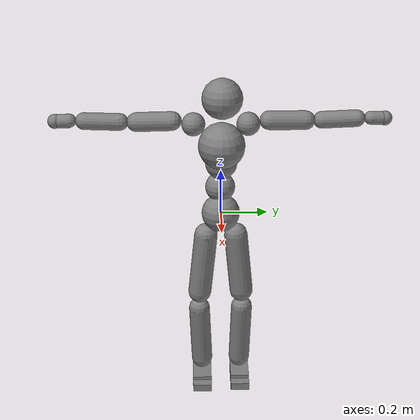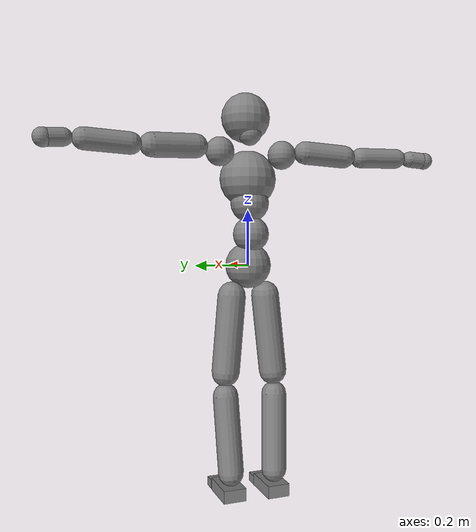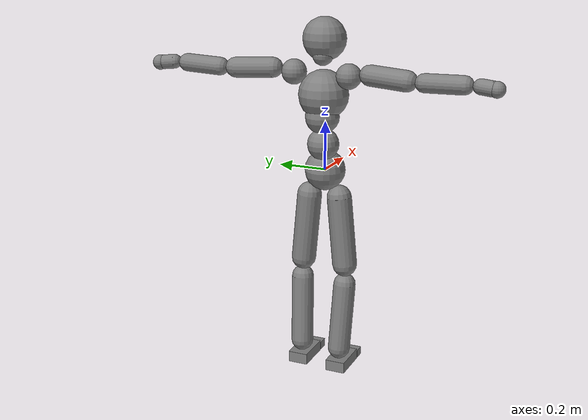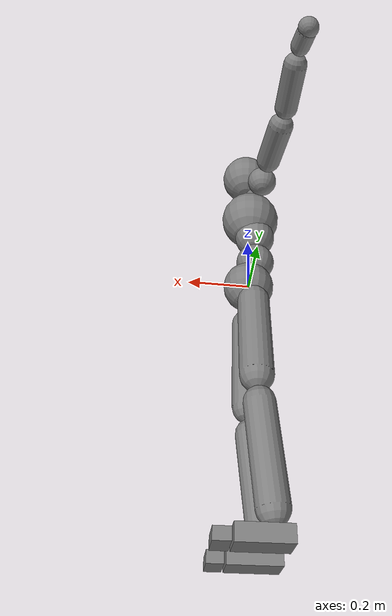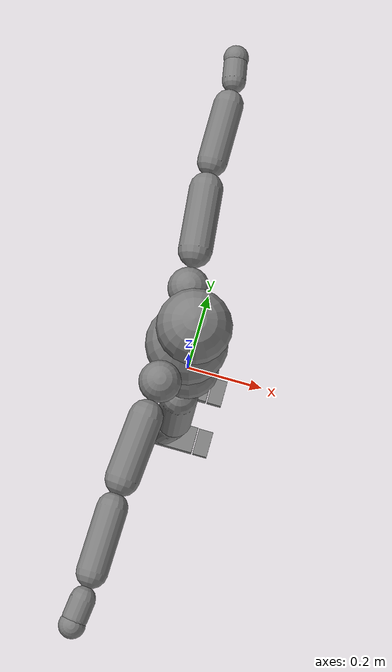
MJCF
<mujoco model="smpl">
  <compiler angle="radian" />
  <default>
    <motor ctrlrange="-1 1" ctrllimited="true" />
    <geom condim="1" friction="1.0 0.05 0.05" solimp=".9 .99 .003" solref=".015 1" />
    <joint limited="true" solimplimit="0 .99 .01" />
    <site size=".04" group="3" />
    <default class="force-torque">
      <site type="box" size=".01 .01 .02" rgba="1 0 0 1" />
    </default>
    <default class="touch">
      <site type="capsule" rgba="0 0 1 .3" />
    </default>
  </default>
  <worldbody>
    <body name="Pelvis" pos="0.000000 0.000000 0.000000">
      <freejoint name="Pelvis" />
      <geom type="sphere" contype="1" conaffinity="1" density="2568.422783" size="0.082800" pos="0.000000 0.000000 0.000000" />
      <body name="L_Hip" pos="-0.006256 0.063940 -0.084088">
        <joint name="L_Hip_x" type="hinge" pos="0 0 0" axis="1 0 0" actuatorfrcrange="-300 300" stiffness="500" damping="50" armature="0.02" range="-0.5236 1.5708" />
        <joint name="L_Hip_y" type="hinge" pos="0 0 0" axis="0 1 0" actuatorfrcrange="-300 300" stiffness="500" damping="50" armature="0.02" range="-2.4435 1.0472" />
        <joint name="L_Hip_z" type="hinge" pos="0 0 0" axis="0 0 1" actuatorfrcrange="-300 300" stiffness="500" damping="50" armature="0.02" range="-0.6109 1.0472" />
        <geom type="capsule" contype="1" conaffinity="1" density="1926.317087" fromto="-0.000290 0.002209 -0.024163 -0.003643 0.027769 -0.303762" size="0.050600" />
        <body name="L_Knee" pos="-0.004140 0.031556 -0.345184">
          <joint name="L_Knee_x" type="hinge" pos="0 0 0" axis="1 0 0" actuatorfrcrange="-200 200" stiffness="500" damping="50" armature="0.02" range="-0.5236 0.5236" />
          <joint name="L_Knee_y" type="hinge" pos="0 0 0" axis="0 1 0" actuatorfrcrange="-200 200" stiffness="500" damping="50" armature="0.02" range="0 2.7925" />
          <joint name="L_Knee_z" type="hinge" pos="0 0 0" axis="0 0 1" actuatorfrcrange="-200 200" stiffness="500" damping="50" armature="0.02" range="-0.5236 0.5236" />
          <geom type="capsule" contype="1" conaffinity="1" density="1605.264239" fromto="-0.004824 -0.001501 -0.043939 -0.035380 -0.011011 -0.322221" size="0.046000" />
          <body name="L_Ankle" pos="-0.040204 -0.012512 -0.366160">
            <joint name="L_Ankle_x" type="hinge" pos="0 0 0" axis="1 0 0" actuatorfrcrange="-100 100" stiffness="400" damping="40" armature="0.02" range="-0.5236 0.5236" />
            <joint name="L_Ankle_y" type="hinge" pos="0 0 0" axis="0 1 0" actuatorfrcrange="-100 100" stiffness="400" damping="40" armature="0.02" range="-0.9599 0.9599" />
            <joint name="L_Ankle_z" type="hinge" pos="0 0 0" axis="0 0 1" actuatorfrcrange="-100 100" stiffness="400" damping="40" armature="0.02" range="-0.6981 0.6981" />
            <geom type="box" contype="1" conaffinity="1" density="1284.211391" pos="0.031832 0.002208 -0.025668" size="0.073600 0.041400 0.023000" quat="1.0000 0.0000 0.0000 0.0000" />
            <body name="L_Toe" pos="0.109756 0.011408 -0.023736">
              <joint name="L_Toe_x" type="hinge" pos="0 0 0" axis="1 0 0" actuatorfrcrange="-75 75" stiffness="200" damping="20" armature="0.02" range="-0.5236 0.5236" />
              <joint name="L_Toe_y" type="hinge" pos="0 0 0" axis="0 1 0" actuatorfrcrange="-75 75" stiffness="200" damping="20" armature="0.02" range="-1.0472 1.0472" />
              <joint name="L_Toe_z" type="hinge" pos="0 0 0" axis="0 0 1" actuatorfrcrange="-75 75" stiffness="200" damping="20" armature="0.02" range="-0.5236 0.5236" />
              <geom type="box" contype="1" conaffinity="1" density="1284.211391" pos="0.023184 -0.009200 -0.007360" size="0.023000 0.041400 0.016560" quat="1.0000 0.0000 0.0000 0.0000" />
            </body>
          </body>
        </body>
      </body>
      <body name="R_Hip" pos="-0.003956 -0.062284 -0.083260">
        <joint name="R_Hip_x" type="hinge" pos="0 0 0" axis="1 0 0" actuatorfrcrange="-300 300" stiffness="500" damping="50" armature="0.02" range="-1.5708 0.5236" />
        <joint name="R_Hip_y" type="hinge" pos="0 0 0" axis="0 1 0" actuatorfrcrange="-300 300" stiffness="500" damping="50" armature="0.02" range="-2.4435 1.0472" />
        <joint name="R_Hip_z" type="hinge" pos="0 0 0" axis="0 0 1" actuatorfrcrange="-300 300" stiffness="500" damping="50" armature="0.02" range="-1.0472 0.6109" />
        <geom type="capsule" contype="1" conaffinity="1" density="1926.317087" fromto="-0.000573 -0.002467 -0.024639 -0.007205 -0.031008 -0.309753" size="0.050600" />
        <body name="R_Knee" pos="-0.008188 -0.035236 -0.351992">
          <joint name="R_Knee_x" type="hinge" pos="0 0 0" axis="1 0 0" actuatorfrcrange="-200 200" stiffness="500" damping="50" armature="0.02" range="-0.5236 0.5236" />
          <joint name="R_Knee_y" type="hinge" pos="0 0 0" axis="0 1 0" actuatorfrcrange="-200 200" stiffness="500" damping="50" armature="0.02" range="0 2.7925" />
          <joint name="R_Knee_z" type="hinge" pos="0 0 0" axis="0 0 1" actuatorfrcrange="-200 200" stiffness="500" damping="50" armature="0.02" range="-0.5236 0.5236" />
          <geom type="capsule" contype="1" conaffinity="1" density="1605.264239" fromto="-0.004670 0.001744 -0.043983 -0.034246 0.012792 -0.322545" size="0.046000" />
          <body name="R_Ankle" pos="-0.038916 0.014536 -0.366528">
            <joint name="R_Ankle_x" type="hinge" pos="0 0 0" axis="1 0 0" actuatorfrcrange="-100 100" stiffness="400" damping="40" armature="0.02" range="-0.5236 0.5236" />
            <joint name="R_Ankle_y" type="hinge" pos="0 0 0" axis="0 1 0" actuatorfrcrange="-100 100" stiffness="400" damping="40" armature="0.02" range="-0.9599 0.9599" />
            <joint name="R_Ankle_z" type="hinge" pos="0 0 0" axis="0 0 1" actuatorfrcrange="-100 100" stiffness="400" damping="40" armature="0.02" range="-0.6981 0.6981" />
            <geom type="box" contype="1" conaffinity="1" density="1284.211391" pos="0.031832 -0.002208 -0.025668" size="0.073600 0.041400 0.023000" quat="1.0000 0.0000 0.0000 0.0000" />
            <body name="R_Toe" pos="0.109756 -0.011408 -0.023736">
              <joint name="R_Toe_x" type="hinge" pos="0 0 0" axis="1 0 0" actuatorfrcrange="-75 75" stiffness="200" damping="20" armature="0.02" range="-0.5236 0.5236" />
              <joint name="R_Toe_y" type="hinge" pos="0 0 0" axis="0 1 0" actuatorfrcrange="-75 75" stiffness="200" damping="20" armature="0.02" range="-1.0472 1.0472" />
              <joint name="R_Toe_z" type="hinge" pos="0 0 0" axis="0 0 1" actuatorfrcrange="-75 75" stiffness="200" damping="20" armature="0.02" range="-0.5236 0.5236" />
              <geom type="box" contype="1" conaffinity="1" density="1284.211391" pos="0.023184 0.009200 -0.007360" size="0.023000 0.041400 0.016560" quat="1.0000 0.0000 0.0000 0.0000" />
            </body>
          </body>
        </body>
      </body>
      <body name="Torso" pos="-0.024564 -0.002300 0.100280">
        <joint name="Torso_x" type="hinge" pos="0 0 0" axis="1 0 0" actuatorfrcrange="-300 300" stiffness="1000" damping="100" armature="0.02" range="-1.0472 1.0472" />
        <joint name="Torso_y" type="hinge" pos="0 0 0" axis="0 1 0" actuatorfrcrange="-300 300" stiffness="1000" damping="100" armature="0.02" range="-1.0472 1.5708" />
        <joint name="Torso_z" type="hinge" pos="0 0 0" axis="0 0 1" actuatorfrcrange="-300 300" stiffness="1000" damping="100" armature="0.02" range="-0.8727 0.8727" />
        <geom type="sphere" contype="1" conaffinity="1" density="2568.422783" size="0.064400" pos="0.000101 0.000506 0.012438" />
        <body name="Spine" pos="0.001012 0.005060 0.124384">
          <joint name="Spine_x" type="hinge" pos="0 0 0" axis="1 0 0" actuatorfrcrange="-200 200" stiffness="1000" damping="100" armature="0.02" range="-1.0472 1.0472" />
          <joint name="Spine_y" type="hinge" pos="0 0 0" axis="0 1 0" actuatorfrcrange="-200 200" stiffness="1000" damping="100" armature="0.02" range="-1.0472 1.5708" />
          <joint name="Spine_z" type="hinge" pos="0 0 0" axis="0 0 1" actuatorfrcrange="-200 200" stiffness="1000" damping="100" armature="0.02" range="-0.8727 0.8727" />
          <geom type="sphere" contype="1" conaffinity="1" density="2568.422783" size="0.069000" pos="0.000000 0.000000 0.000000" />
          <body name="Chest" pos="0.023368 0.001380 0.048668">
            <joint name="Chest_x" type="hinge" pos="0 0 0" axis="1 0 0" actuatorfrcrange="-150 150" stiffness="1000" damping="100" armature="0.02" range="-1.0472 1.0472" />
            <joint name="Chest_y" type="hinge" pos="0 0 0" axis="0 1 0" actuatorfrcrange="-150 150" stiffness="1000" damping="100" armature="0.02" range="-1.0472 1.5708" />
            <joint name="Chest_z" type="hinge" pos="0 0 0" axis="0 0 1" actuatorfrcrange="-150 150" stiffness="1000" damping="100" armature="0.02" range="-0.8727 0.8727" />
            <geom type="sphere" contype="1" conaffinity="1" density="2568.422783" size="0.101200" pos="-0.007360 0.000000 0.036800" />
            <body name="Neck" pos="-0.039468 -0.002576 0.196788">
              <joint name="Neck_x" type="hinge" pos="0 0 0" axis="1 0 0" actuatorfrcrange="-75 75" stiffness="500" damping="50" armature="0.02" range="-0.8727 0.8727" />
              <joint name="Neck_y" type="hinge" pos="0 0 0" axis="0 1 0" actuatorfrcrange="-75 75" stiffness="500" damping="50" armature="0.02" range="-0.6981 1.0472" />
              <joint name="Neck_z" type="hinge" pos="0 0 0" axis="0 0 1" actuatorfrcrange="-75 75" stiffness="500" damping="50" armature="0.02" range="-0.7854 0.7854" />
              <geom type="sphere" contype="1" conaffinity="1" density="1284.211391" size="0.041400" pos="0.018400 0.000000 0.000000" />
              <body name="Head" pos="0.047196 0.004784 0.059800">
                <joint name="Head_x" type="hinge" pos="0 0 0" axis="1 0 0" actuatorfrcrange="-25 25" stiffness="200" damping="20" armature="0.02" range="-0.8727 0.8727" />
                <joint name="Head_y" type="hinge" pos="0 0 0" axis="0 1 0" actuatorfrcrange="-25 25" stiffness="200" damping="20" armature="0.02" range="-0.6981 1.0472" />
                <joint name="Head_z" type="hinge" pos="0 0 0" axis="0 0 1" actuatorfrcrange="-25 25" stiffness="200" damping="20" armature="0.02" range="-0.7854 0.7854" />
                <geom type="sphere" contype="1" conaffinity="1" density="1284.211391" size="0.087400" pos="0.000000 0.000000 0.000000" />
              </body>
            </body>
            <body name="L_Thorax" pos="-0.031372 0.072496 0.111964">
              <joint name="L_Thorax_x" type="hinge" pos="0 0 0" axis="1 0 0" actuatorfrcrange="-200 200" stiffness="500" damping="50" armature="0.02" range="-0.6981 0.5236" />
              <joint name="L_Thorax_y" type="hinge" pos="0 0 0" axis="0 1 0" actuatorfrcrange="-200 200" stiffness="500" damping="50" armature="0.02" range="-0.5236 0.5236" />
              <joint name="L_Thorax_z" type="hinge" pos="0 0 0" axis="0 0 1" actuatorfrcrange="-200 200" stiffness="500" damping="50" armature="0.02" range="-0.5236 0.5236" />
              <geom type="sphere" contype="1" conaffinity="1" density="1284.211391" size="0.050600" pos="-0.004094 0.041860 0.014030" />
              <body name="L_Shoulder" pos="-0.008188 0.083720 0.028060">
                <joint name="L_Shoulder_x" type="hinge" pos="0 0 0" axis="1 0 0" actuatorfrcrange="-150 150" stiffness="400" damping="40" armature="0.02" range="-2.3562 1.5708" />
                <joint name="L_Shoulder_y" type="hinge" pos="0 0 0" axis="0 1 0" actuatorfrcrange="-150 150" stiffness="400" damping="40" armature="0.02" range="-1.5708 1.5708" />
                <joint name="L_Shoulder_z" type="hinge" pos="0 0 0" axis="0 0 1" actuatorfrcrange="-150 150" stiffness="400" damping="40" armature="0.02" range="-2.7925 1.0472" />
                <geom type="capsule" contype="1" conaffinity="1" density="1284.211391" fromto="-0.005060 0.047766 -0.002355 -0.021505 0.203007 -0.010010" size="0.041400" />
                <body name="L_Elbow" pos="-0.025300 0.238832 -0.011776">
                  <joint name="L_Elbow_x" type="hinge" pos="0 0 0" axis="1 0 0" actuatorfrcrange="-100 100" stiffness="300" damping="30" armature="0.02" range="-0.5236 0.5236" />
                  <joint name="L_Elbow_y" type="hinge" pos="0 0 0" axis="0 1 0" actuatorfrcrange="-100 100" stiffness="300" damping="30" armature="0.02" range="-0.5236 0.5236" />
                  <joint name="L_Elbow_z" type="hinge" pos="0 0 0" axis="0 0 1" actuatorfrcrange="-100 100" stiffness="300" damping="30" armature="0.02" range="-2.7925 0" />
                  <geom type="capsule" contype="1" conaffinity="1" density="1284.211391" fromto="-0.000166 0.034390 0.001242 -0.000828 0.183448 0.006624" size="0.036800" />
                  <body name="L_Wrist" pos="-0.001104 0.229264 0.008280">
                    <joint name="L_Wrist_x" type="hinge" pos="0 0 0" axis="1 0 0" actuatorfrcrange="-75 75" stiffness="200" damping="20" armature="0.02" range="-1.5708 1.5708" />
                    <joint name="L_Wrist_y" type="hinge" pos="0 0 0" axis="0 1 0" actuatorfrcrange="-75 75" stiffness="200" damping="20" armature="0.02" range="-1.5708 1.5708" />
                    <joint name="L_Wrist_z" type="hinge" pos="0 0 0" axis="0 0 1" actuatorfrcrange="-75 75" stiffness="200" damping="20" armature="0.02" range="-1.0472 1.0472" />
                    <geom type="capsule" contype="1" conaffinity="1" density="1284.211391" fromto="-0.002760 0.015456 -0.001472 -0.011040 0.061824 -0.005980" size="0.029256" />
                    <body name="L_Hand" pos="-0.013708 0.077280 -0.007544">
                      <joint name="L_Hand_x" type="hinge" pos="0 0 0" axis="1 0 0" actuatorfrcrange="-50 50" stiffness="100" damping="10" armature="0.02" range="-1.5708 1.5708" />
                      <joint name="L_Hand_y" type="hinge" pos="0 0 0" axis="0 1 0" actuatorfrcrange="-50 50" stiffness="100" damping="10" armature="0.02" range="-1.5708 1.5708" />
                      <joint name="L_Hand_z" type="hinge" pos="0 0 0" axis="0 0 1" actuatorfrcrange="-50 50" stiffness="100" damping="10" armature="0.02" range="-1.5708 1.5708" />
                      <geom type="sphere" contype="1" conaffinity="1" density="1284.211391" size="0.031004" pos="0.000000 0.000000 0.000000" />
                    </body>
                  </body>
                </body>
              </body>
            </body>
            <body name="R_Thorax" pos="-0.035512 -0.075256 0.109296">
              <joint name="R_Thorax_x" type="hinge" pos="0 0 0" axis="1 0 0" actuatorfrcrange="-200 200" stiffness="500" damping="50" armature="0.02" range="-0.5236 0.6981" />
              <joint name="R_Thorax_y" type="hinge" pos="0 0 0" axis="0 1 0" actuatorfrcrange="-200 200" stiffness="500" damping="50" armature="0.02" range="-0.5236 0.5236" />
              <joint name="R_Thorax_z" type="hinge" pos="0 0 0" axis="0 0 1" actuatorfrcrange="-200 200" stiffness="500" damping="50" armature="0.02" range="-0.5236 0.5236" />
              <geom type="sphere" contype="1" conaffinity="1" density="1284.211391" size="0.050600" pos="-0.004186 -0.044160 0.014996" />
              <body name="R_Shoulder" pos="-0.008372 -0.088320 0.029992">
                <joint name="R_Shoulder_x" type="hinge" pos="0 0 0" axis="1 0 0" actuatorfrcrange="-150 150" stiffness="400" damping="40" armature="0.02" range="-1.5708 2.3562" />
                <joint name="R_Shoulder_y" type="hinge" pos="0 0 0" axis="0 1 0" actuatorfrcrange="-150 150" stiffness="400" damping="40" armature="0.02" range="-1.5708 1.5708" />
                <joint name="R_Shoulder_z" type="hinge" pos="0 0 0" axis="0 0 1" actuatorfrcrange="-150 150" stiffness="400" damping="40" armature="0.02" range="-1.0472 2.7925" />
                <geom type="capsule" contype="1" conaffinity="1" density="1284.211391" fromto="-0.003938 -0.046681 -0.002447 -0.016735 -0.198393 -0.010401" size="0.041400" />
                <body name="R_Elbow" pos="-0.019688 -0.233404 -0.012236">
                  <joint name="R_Elbow_x" type="hinge" pos="0 0 0" axis="1 0 0" actuatorfrcrange="-100 100" stiffness="300" damping="30" armature="0.02" range="-0.5236 0.5236" />
                  <joint name="R_Elbow_y" type="hinge" pos="0 0 0" axis="0 1 0" actuatorfrcrange="-100 100" stiffness="300" damping="30" armature="0.02" range="-0.5236 0.5236" />
                  <joint name="R_Elbow_z" type="hinge" pos="0 0 0" axis="0 0 1" actuatorfrcrange="-100 100" stiffness="300" damping="30" armature="0.02" range="0 2.7925" />
                  <geom type="capsule" contype="1" conaffinity="1" density="1284.211391" fromto="-0.000773 -0.035231 0.001076 -0.004122 -0.187901 0.005741" size="0.036800" />
                  <body name="R_Wrist" pos="-0.005152 -0.234876 0.007176">
                    <joint name="R_Wrist_x" type="hinge" pos="0 0 0" axis="1 0 0" actuatorfrcrange="-75 75" stiffness="200" damping="20" armature="0.02" range="-1.5708 1.5708" />
                    <joint name="R_Wrist_y" type="hinge" pos="0 0 0" axis="0 1 0" actuatorfrcrange="-75 75" stiffness="200" damping="20" armature="0.02" range="-1.5708 1.5708" />
                    <joint name="R_Wrist_z" type="hinge" pos="0 0 0" axis="0 0 1" actuatorfrcrange="-75 75" stiffness="200" damping="20" armature="0.02" range="-1.0472 1.0472" />
                    <geom type="capsule" contype="1" conaffinity="1" density="1284.211391" fromto="-0.001932 -0.015548 -0.001104 -0.007636 -0.062284 -0.004508" size="0.029992" />
                    <body name="R_Hand" pos="-0.009476 -0.077832 -0.005612">
                      <joint name="R_Hand_x" type="hinge" pos="0 0 0" axis="1 0 0" actuatorfrcrange="-50 50" stiffness="100" damping="10" armature="0.02" range="-1.5708 1.5708" />
                      <joint name="R_Hand_y" type="hinge" pos="0 0 0" axis="0 1 0" actuatorfrcrange="-50 50" stiffness="100" damping="10" armature="0.02" range="-1.5708 1.5708" />
                      <joint name="R_Hand_z" type="hinge" pos="0 0 0" axis="0 0 1" actuatorfrcrange="-50 50" stiffness="100" damping="10" armature="0.02" range="-1.5708 1.5708" />
                      <geom type="sphere" contype="1" conaffinity="1" density="1284.211391" size="0.031280" pos="0.000000 0.000000 0.000000" />
                    </body>
                  </body>
                </body>
              </body>
            </body>
          </body>
        </body>
      </body>
    </body>
  </worldbody>
  <actuator>
    <motor name="L_Hip_x" joint="L_Hip_x" gear="300" />
    <motor name="L_Hip_y" joint="L_Hip_y" gear="300" />
    <motor name="L_Hip_z" joint="L_Hip_z" gear="300" />
    <motor name="L_Knee_x" joint="L_Knee_x" gear="200" />
    <motor name="L_Knee_y" joint="L_Knee_y" gear="200" />
    <motor name="L_Knee_z" joint="L_Knee_z" gear="200" />
    <motor name="L_Ankle_x" joint="L_Ankle_x" gear="100" />
    <motor name="L_Ankle_y" joint="L_Ankle_y" gear="100" />
    <motor name="L_Ankle_z" joint="L_Ankle_z" gear="100" />
    <motor name="L_Toe_x" joint="L_Toe_x" gear="75" />
    <motor name="L_Toe_y" joint="L_Toe_y" gear="75" />
    <motor name="L_Toe_z" joint="L_Toe_z" gear="75" />
    <motor name="R_Hip_x" joint="R_Hip_x" gear="300" />
    <motor name="R_Hip_y" joint="R_Hip_y" gear="300" />
    <motor name="R_Hip_z" joint="R_Hip_z" gear="300" />
    <motor name="R_Knee_x" joint="R_Knee_x" gear="200" />
    <motor name="R_Knee_y" joint="R_Knee_y" gear="200" />
    <motor name="R_Knee_z" joint="R_Knee_z" gear="200" />
    <motor name="R_Ankle_x" joint="R_Ankle_x" gear="100" />
    <motor name="R_Ankle_y" joint="R_Ankle_y" gear="100" />
    <motor name="R_Ankle_z" joint="R_Ankle_z" gear="100" />
    <motor name="R_Toe_x" joint="R_Toe_x" gear="75" />
    <motor name="R_Toe_y" joint="R_Toe_y" gear="75" />
    <motor name="R_Toe_z" joint="R_Toe_z" gear="75" />
    <motor name="Torso_x" joint="Torso_x" gear="300" />
    <motor name="Torso_y" joint="Torso_y" gear="300" />
    <motor name="Torso_z" joint="Torso_z" gear="300" />
    <motor name="Spine_x" joint="Spine_x" gear="200" />
    <motor name="Spine_y" joint="Spine_y" gear="200" />
    <motor name="Spine_z" joint="Spine_z" gear="200" />
    <motor name="Chest_x" joint="Chest_x" gear="150" />
    <motor name="Chest_y" joint="Chest_y" gear="150" />
    <motor name="Chest_z" joint="Chest_z" gear="150" />
    <motor name="Neck_x" joint="Neck_x" gear="75" />
    <motor name="Neck_y" joint="Neck_y" gear="75" />
    <motor name="Neck_z" joint="Neck_z" gear="75" />
    <motor name="Head_x" joint="Head_x" gear="25" />
    <motor name="Head_y" joint="Head_y" gear="25" />
    <motor name="Head_z" joint="Head_z" gear="25" />
    <motor name="L_Thorax_x" joint="L_Thorax_x" gear="200" />
    <motor name="L_Thorax_y" joint="L_Thorax_y" gear="200" />
    <motor name="L_Thorax_z" joint="L_Thorax_z" gear="200" />
    <motor name="L_Shoulder_x" joint="L_Shoulder_x" gear="150" />
    <motor name="L_Shoulder_y" joint="L_Shoulder_y" gear="150" />
    <motor name="L_Shoulder_z" joint="L_Shoulder_z" gear="150" />
    <motor name="L_Elbow_x" joint="L_Elbow_x" gear="100" />
    <motor name="L_Elbow_y" joint="L_Elbow_y" gear="100" />
    <motor name="L_Elbow_z" joint="L_Elbow_z" gear="100" />
    <motor name="L_Wrist_x" joint="L_Wrist_x" gear="75" />
    <motor name="L_Wrist_y" joint="L_Wrist_y" gear="75" />
    <motor name="L_Wrist_z" joint="L_Wrist_z" gear="75" />
    <motor name="L_Hand_x" joint="L_Hand_x" gear="50" />
    <motor name="L_Hand_y" joint="L_Hand_y" gear="50" />
    <motor name="L_Hand_z" joint="L_Hand_z" gear="50" />
    <motor name="R_Thorax_x" joint="R_Thorax_x" gear="200" />
    <motor name="R_Thorax_y" joint="R_Thorax_y" gear="200" />
    <motor name="R_Thorax_z" joint="R_Thorax_z" gear="200" />
    <motor name="R_Shoulder_x" joint="R_Shoulder_x" gear="150" />
    <motor name="R_Shoulder_y" joint="R_Shoulder_y" gear="150" />
    <motor name="R_Shoulder_z" joint="R_Shoulder_z" gear="150" />
    <motor name="R_Elbow_x" joint="R_Elbow_x" gear="100" />
    <motor name="R_Elbow_y" joint="R_Elbow_y" gear="100" />
    <motor name="R_Elbow_z" joint="R_Elbow_z" gear="100" />
    <motor name="R_Wrist_x" joint="R_Wrist_x" gear="75" />
    <motor name="R_Wrist_y" joint="R_Wrist_y" gear="75" />
    <motor name="R_Wrist_z" joint="R_Wrist_z" gear="75" />
    <motor name="R_Hand_x" joint="R_Hand_x" gear="50" />
    <motor name="R_Hand_y" joint="R_Hand_y" gear="50" />
    <motor name="R_Hand_z" joint="R_Hand_z" gear="50" />
  </actuator>
</mujoco>
